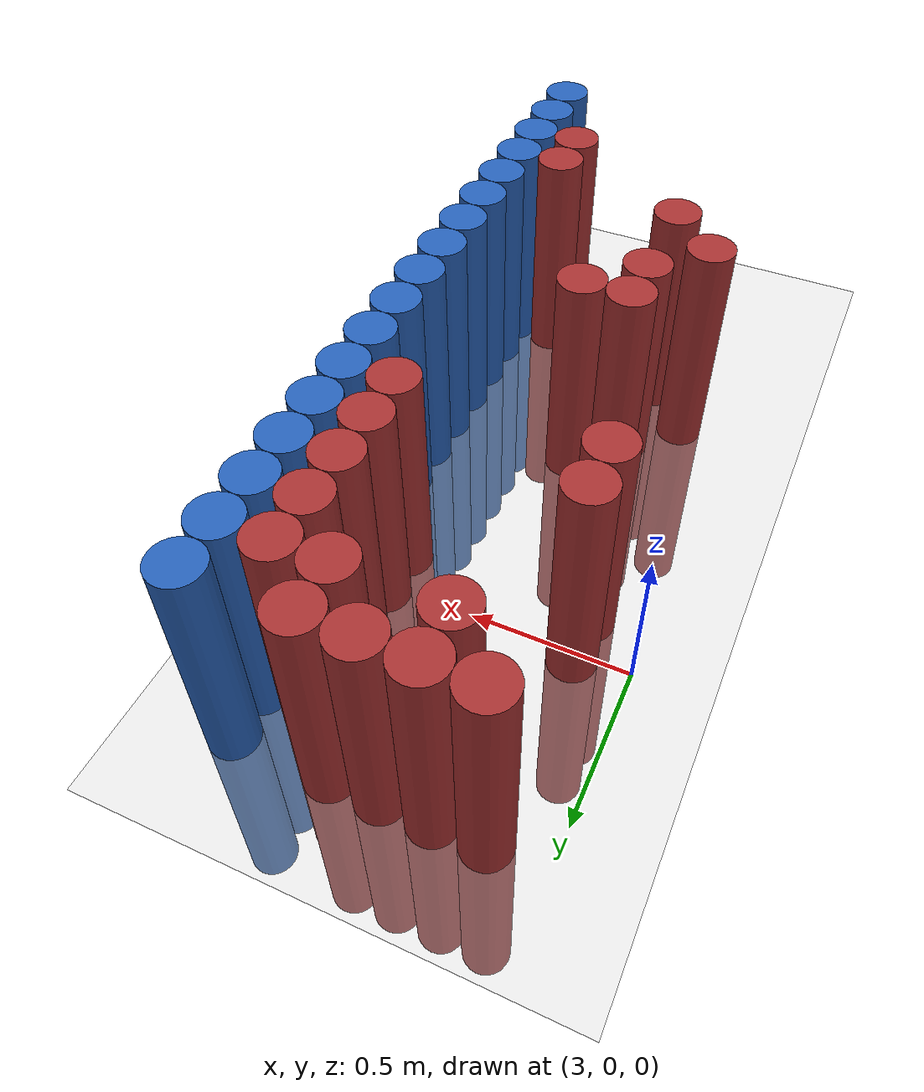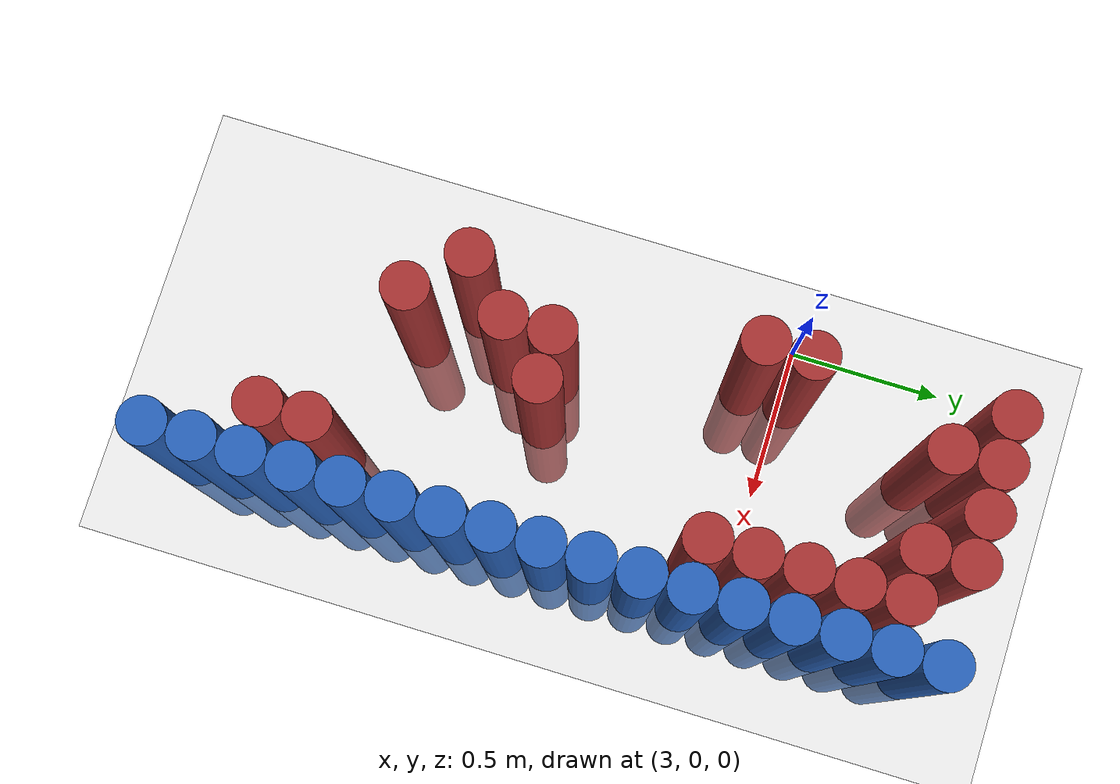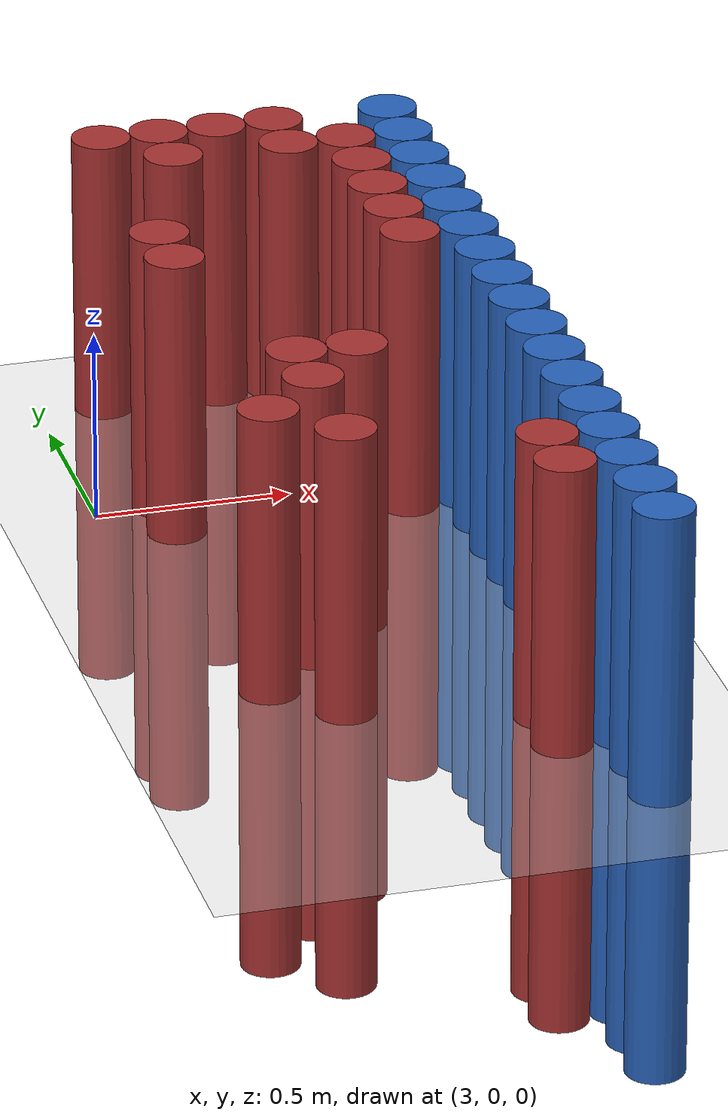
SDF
<sdf version="1.6">
 <world name="default">
  <model name="ground_plane">
   <static>1</static>
   <link name="link">
    <collision name="collision">
     <geometry><plane><normal>0 0 1</normal><size>100 100</size></plane></geometry>
     <surface><friction><ode><mu>100</mu><mu2>50</mu2></ode></friction></surface>
    </collision>
    <visual name="visual">
     <cast_shadows>0</cast_shadows>
     <geometry><plane><normal>0 0 1</normal><size>100 100</size></plane></geometry>
     <material>
      <script><uri>file://media/materials/scripts/gazebo.material</uri><name>Gazebo/Grey</name></script>
     </material>
    </visual>
   </link>
  </model>
  <model name="unit_cylinder_90">
   <static>1</static>
   <pose>3.925000 -1.775000 0.000000 0.000000 0.000000 0.000000</pose>
   <link name="link">
    <inertial>
     <mass>1</mass>
     <inertia><ixx>0.145833</ixx><ixy>0</ixy><ixz>0</ixz><iyy>0.145833</iyy><iyz>0</iyz><izz>0.125</izz></inertia>
    </inertial>
    <collision name="collision">
     <geometry><cylinder><radius>0.075000</radius><length>1.5</length></cylinder></geometry>
    </collision>
    <visual name="visual">
     <geometry><cylinder><radius>0.075000</radius><length>1.5</length></cylinder></geometry>
     <material>
      <ambient>0.152000 0.379000 0.720000 1</ambient>
      <diffuse>0.152000 0.379000 0.720000 1</diffuse>
     </material>
     <material>
      <script><name>Gazebo/Grey</name><uri>file://media/materials/scripts/gazebo.material</uri></script>
     </material>
    </visual>
   </link>
  </model>
  <model name="unit_cylinder_92">
   <static>1</static>
   <pose>3.925000 -1.625000 0.000000 0.000000 0.000000 0.000000</pose>
   <link name="link">
    <inertial>
     <mass>1</mass>
     <inertia><ixx>0.145833</ixx><ixy>0</ixy><ixz>0</ixz><iyy>0.145833</iyy><iyz>0</iyz><izz>0.125</izz></inertia>
    </inertial>
    <collision name="collision">
     <geometry><cylinder><radius>0.075000</radius><length>1.5</length></cylinder></geometry>
    </collision>
    <visual name="visual">
     <geometry><cylinder><radius>0.075000</radius><length>1.5</length></cylinder></geometry>
     <material>
      <ambient>0.152000 0.379000 0.720000 1</ambient>
      <diffuse>0.152000 0.379000 0.720000 1</diffuse>
     </material>
     <material>
      <script><name>Gazebo/Grey</name><uri>file://media/materials/scripts/gazebo.material</uri></script>
     </material>
    </visual>
   </link>
  </model>
  <model name="unit_cylinder_94">
   <static>1</static>
   <pose>3.925000 -1.475000 0.000000 0.000000 0.000000 0.000000</pose>
   <link name="link">
    <inertial>
     <mass>1</mass>
     <inertia><ixx>0.145833</ixx><ixy>0</ixy><ixz>0</ixz><iyy>0.145833</iyy><iyz>0</iyz><izz>0.125</izz></inertia>
    </inertial>
    <collision name="collision">
     <geometry><cylinder><radius>0.075000</radius><length>1.5</length></cylinder></geometry>
    </collision>
    <visual name="visual">
     <geometry><cylinder><radius>0.075000</radius><length>1.5</length></cylinder></geometry>
     <material>
      <ambient>0.152000 0.379000 0.720000 1</ambient>
      <diffuse>0.152000 0.379000 0.720000 1</diffuse>
     </material>
     <material>
      <script><name>Gazebo/Grey</name><uri>file://media/materials/scripts/gazebo.material</uri></script>
     </material>
    </visual>
   </link>
  </model>
  <model name="unit_cylinder_96">
   <static>1</static>
   <pose>3.925000 -1.325000 0.000000 0.000000 0.000000 0.000000</pose>
   <link name="link">
    <inertial>
     <mass>1</mass>
     <inertia><ixx>0.145833</ixx><ixy>0</ixy><ixz>0</ixz><iyy>0.145833</iyy><iyz>0</iyz><izz>0.125</izz></inertia>
    </inertial>
    <collision name="collision">
     <geometry><cylinder><radius>0.075000</radius><length>1.5</length></cylinder></geometry>
    </collision>
    <visual name="visual">
     <geometry><cylinder><radius>0.075000</radius><length>1.5</length></cylinder></geometry>
     <material>
      <ambient>0.152000 0.379000 0.720000 1</ambient>
      <diffuse>0.152000 0.379000 0.720000 1</diffuse>
     </material>
     <material>
      <script><name>Gazebo/Grey</name><uri>file://media/materials/scripts/gazebo.material</uri></script>
     </material>
    </visual>
   </link>
  </model>
  <model name="unit_cylinder_98">
   <static>1</static>
   <pose>3.925000 -1.175000 0.000000 0.000000 0.000000 0.000000</pose>
   <link name="link">
    <inertial>
     <mass>1</mass>
     <inertia><ixx>0.145833</ixx><ixy>0</ixy><ixz>0</ixz><iyy>0.145833</iyy><iyz>0</iyz><izz>0.125</izz></inertia>
    </inertial>
    <collision name="collision">
     <geometry><cylinder><radius>0.075000</radius><length>1.5</length></cylinder></geometry>
    </collision>
    <visual name="visual">
     <geometry><cylinder><radius>0.075000</radius><length>1.5</length></cylinder></geometry>
     <material>
      <ambient>0.152000 0.379000 0.720000 1</ambient>
      <diffuse>0.152000 0.379000 0.720000 1</diffuse>
     </material>
     <material>
      <script><name>Gazebo/Grey</name><uri>file://media/materials/scripts/gazebo.material</uri></script>
     </material>
    </visual>
   </link>
  </model>
  <model name="unit_cylinder_100">
   <static>1</static>
   <pose>3.925000 -1.025000 0.000000 0.000000 0.000000 0.000000</pose>
   <link name="link">
    <inertial>
     <mass>1</mass>
     <inertia><ixx>0.145833</ixx><ixy>0</ixy><ixz>0</ixz><iyy>0.145833</iyy><iyz>0</iyz><izz>0.125</izz></inertia>
    </inertial>
    <collision name="collision">
     <geometry><cylinder><radius>0.075000</radius><length>1.5</length></cylinder></geometry>
    </collision>
    <visual name="visual">
     <geometry><cylinder><radius>0.075000</radius><length>1.5</length></cylinder></geometry>
     <material>
      <ambient>0.152000 0.379000 0.720000 1</ambient>
      <diffuse>0.152000 0.379000 0.720000 1</diffuse>
     </material>
     <material>
      <script><name>Gazebo/Grey</name><uri>file://media/materials/scripts/gazebo.material</uri></script>
     </material>
    </visual>
   </link>
  </model>
  <model name="unit_cylinder_102">
   <static>1</static>
   <pose>3.925000 -0.875000 0.000000 0.000000 0.000000 0.000000</pose>
   <link name="link">
    <inertial>
     <mass>1</mass>
     <inertia><ixx>0.145833</ixx><ixy>0</ixy><ixz>0</ixz><iyy>0.145833</iyy><iyz>0</iyz><izz>0.125</izz></inertia>
    </inertial>
    <collision name="collision">
     <geometry><cylinder><radius>0.075000</radius><length>1.5</length></cylinder></geometry>
    </collision>
    <visual name="visual">
     <geometry><cylinder><radius>0.075000</radius><length>1.5</length></cylinder></geometry>
     <material>
      <ambient>0.152000 0.379000 0.720000 1</ambient>
      <diffuse>0.152000 0.379000 0.720000 1</diffuse>
     </material>
     <material>
      <script><name>Gazebo/Grey</name><uri>file://media/materials/scripts/gazebo.material</uri></script>
     </material>
    </visual>
   </link>
  </model>
  <model name="unit_cylinder_104">
   <static>1</static>
   <pose>3.925000 -0.725000 0.000000 0.000000 0.000000 0.000000</pose>
   <link name="link">
    <inertial>
     <mass>1</mass>
     <inertia><ixx>0.145833</ixx><ixy>0</ixy><ixz>0</ixz><iyy>0.145833</iyy><iyz>0</iyz><izz>0.125</izz></inertia>
    </inertial>
    <collision name="collision">
     <geometry><cylinder><radius>0.075000</radius><length>1.5</length></cylinder></geometry>
    </collision>
    <visual name="visual">
     <geometry><cylinder><radius>0.075000</radius><length>1.5</length></cylinder></geometry>
     <material>
      <ambient>0.152000 0.379000 0.720000 1</ambient>
      <diffuse>0.152000 0.379000 0.720000 1</diffuse>
     </material>
     <material>
      <script><name>Gazebo/Grey</name><uri>file://media/materials/scripts/gazebo.material</uri></script>
     </material>
    </visual>
   </link>
  </model>
  <model name="unit_cylinder_106">
   <static>1</static>
   <pose>3.925000 -0.575000 0.000000 0.000000 0.000000 0.000000</pose>
   <link name="link">
    <inertial>
     <mass>1</mass>
     <inertia><ixx>0.145833</ixx><ixy>0</ixy><ixz>0</ixz><iyy>0.145833</iyy><iyz>0</iyz><izz>0.125</izz></inertia>
    </inertial>
    <collision name="collision">
     <geometry><cylinder><radius>0.075000</radius><length>1.5</length></cylinder></geometry>
    </collision>
    <visual name="visual">
     <geometry><cylinder><radius>0.075000</radius><length>1.5</length></cylinder></geometry>
     <material>
      <ambient>0.152000 0.379000 0.720000 1</ambient>
      <diffuse>0.152000 0.379000 0.720000 1</diffuse>
     </material>
     <material>
      <script><name>Gazebo/Grey</name><uri>file://media/materials/scripts/gazebo.material</uri></script>
     </material>
    </visual>
   </link>
  </model>
  <model name="unit_cylinder_108">
   <static>1</static>
   <pose>3.925000 -0.425000 0.000000 0.000000 0.000000 0.000000</pose>
   <link name="link">
    <inertial>
     <mass>1</mass>
     <inertia><ixx>0.145833</ixx><ixy>0</ixy><ixz>0</ixz><iyy>0.145833</iyy><iyz>0</iyz><izz>0.125</izz></inertia>
    </inertial>
    <collision name="collision">
     <geometry><cylinder><radius>0.075000</radius><length>1.5</length></cylinder></geometry>
    </collision>
    <visual name="visual">
     <geometry><cylinder><radius>0.075000</radius><length>1.5</length></cylinder></geometry>
     <material>
      <ambient>0.152000 0.379000 0.720000 1</ambient>
      <diffuse>0.152000 0.379000 0.720000 1</diffuse>
     </material>
     <material>
      <script><name>Gazebo/Grey</name><uri>file://media/materials/scripts/gazebo.material</uri></script>
     </material>
    </visual>
   </link>
  </model>
  <model name="unit_cylinder_110">
   <static>1</static>
   <pose>3.925000 -0.275000 0.000000 0.000000 0.000000 0.000000</pose>
   <link name="link">
    <inertial>
     <mass>1</mass>
     <inertia><ixx>0.145833</ixx><ixy>0</ixy><ixz>0</ixz><iyy>0.145833</iyy><iyz>0</iyz><izz>0.125</izz></inertia>
    </inertial>
    <collision name="collision">
     <geometry><cylinder><radius>0.075000</radius><length>1.5</length></cylinder></geometry>
    </collision>
    <visual name="visual">
     <geometry><cylinder><radius>0.075000</radius><length>1.5</length></cylinder></geometry>
     <material>
      <ambient>0.152000 0.379000 0.720000 1</ambient>
      <diffuse>0.152000 0.379000 0.720000 1</diffuse>
     </material>
     <material>
      <script><name>Gazebo/Grey</name><uri>file://media/materials/scripts/gazebo.material</uri></script>
     </material>
    </visual>
   </link>
  </model>
  <model name="unit_cylinder_112">
   <static>1</static>
   <pose>3.925000 -0.125000 0.000000 0.000000 0.000000 0.000000</pose>
   <link name="link">
    <inertial>
     <mass>1</mass>
     <inertia><ixx>0.145833</ixx><ixy>0</ixy><ixz>0</ixz><iyy>0.145833</iyy><iyz>0</iyz><izz>0.125</izz></inertia>
    </inertial>
    <collision name="collision">
     <geometry><cylinder><radius>0.075000</radius><length>1.5</length></cylinder></geometry>
    </collision>
    <visual name="visual">
     <geometry><cylinder><radius>0.075000</radius><length>1.5</length></cylinder></geometry>
     <material>
      <ambient>0.152000 0.379000 0.720000 1</ambient>
      <diffuse>0.152000 0.379000 0.720000 1</diffuse>
     </material>
     <material>
      <script><name>Gazebo/Grey</name><uri>file://media/materials/scripts/gazebo.material</uri></script>
     </material>
    </visual>
   </link>
  </model>
  <model name="unit_cylinder_114">
   <static>1</static>
   <pose>3.925000 0.025000 0.000000 0.000000 0.000000 0.000000</pose>
   <link name="link">
    <inertial>
     <mass>1</mass>
     <inertia><ixx>0.145833</ixx><ixy>0</ixy><ixz>0</ixz><iyy>0.145833</iyy><iyz>0</iyz><izz>0.125</izz></inertia>
    </inertial>
    <collision name="collision">
     <geometry><cylinder><radius>0.075000</radius><length>1.5</length></cylinder></geometry>
    </collision>
    <visual name="visual">
     <geometry><cylinder><radius>0.075000</radius><length>1.5</length></cylinder></geometry>
     <material>
      <ambient>0.152000 0.379000 0.720000 1</ambient>
      <diffuse>0.152000 0.379000 0.720000 1</diffuse>
     </material>
     <material>
      <script><name>Gazebo/Grey</name><uri>file://media/materials/scripts/gazebo.material</uri></script>
     </material>
    </visual>
   </link>
  </model>
  <model name="unit_cylinder_116">
   <static>1</static>
   <pose>3.925000 0.175000 0.000000 0.000000 0.000000 0.000000</pose>
   <link name="link">
    <inertial>
     <mass>1</mass>
     <inertia><ixx>0.145833</ixx><ixy>0</ixy><ixz>0</ixz><iyy>0.145833</iyy><iyz>0</iyz><izz>0.125</izz></inertia>
    </inertial>
    <collision name="collision">
     <geometry><cylinder><radius>0.075000</radius><length>1.5</length></cylinder></geometry>
    </collision>
    <visual name="visual">
     <geometry><cylinder><radius>0.075000</radius><length>1.5</length></cylinder></geometry>
     <material>
      <ambient>0.152000 0.379000 0.720000 1</ambient>
      <diffuse>0.152000 0.379000 0.720000 1</diffuse>
     </material>
     <material>
      <script><name>Gazebo/Grey</name><uri>file://media/materials/scripts/gazebo.material</uri></script>
     </material>
    </visual>
   </link>
  </model>
  <model name="unit_cylinder_118">
   <static>1</static>
   <pose>3.925000 0.325000 0.000000 0.000000 0.000000 0.000000</pose>
   <link name="link">
    <inertial>
     <mass>1</mass>
     <inertia><ixx>0.145833</ixx><ixy>0</ixy><ixz>0</ixz><iyy>0.145833</iyy><iyz>0</iyz><izz>0.125</izz></inertia>
    </inertial>
    <collision name="collision">
     <geometry><cylinder><radius>0.075000</radius><length>1.5</length></cylinder></geometry>
    </collision>
    <visual name="visual">
     <geometry><cylinder><radius>0.075000</radius><length>1.5</length></cylinder></geometry>
     <material>
      <ambient>0.152000 0.379000 0.720000 1</ambient>
      <diffuse>0.152000 0.379000 0.720000 1</diffuse>
     </material>
     <material>
      <script><name>Gazebo/Grey</name><uri>file://media/materials/scripts/gazebo.material</uri></script>
     </material>
    </visual>
   </link>
  </model>
  <model name="unit_cylinder_120">
   <static>1</static>
   <pose>3.925000 0.475000 0.000000 0.000000 0.000000 0.000000</pose>
   <link name="link">
    <inertial>
     <mass>1</mass>
     <inertia><ixx>0.145833</ixx><ixy>0</ixy><ixz>0</ixz><iyy>0.145833</iyy><iyz>0</iyz><izz>0.125</izz></inertia>
    </inertial>
    <collision name="collision">
     <geometry><cylinder><radius>0.075000</radius><length>1.5</length></cylinder></geometry>
    </collision>
    <visual name="visual">
     <geometry><cylinder><radius>0.075000</radius><length>1.5</length></cylinder></geometry>
     <material>
      <ambient>0.152000 0.379000 0.720000 1</ambient>
      <diffuse>0.152000 0.379000 0.720000 1</diffuse>
     </material>
     <material>
      <script><name>Gazebo/Grey</name><uri>file://media/materials/scripts/gazebo.material</uri></script>
     </material>
    </visual>
   </link>
  </model>
  <model name="unit_cylinder_122">
   <static>1</static>
   <pose>3.925000 0.625000 0.000000 0.000000 0.000000 0.000000</pose>
   <link name="link">
    <inertial>
     <mass>1</mass>
     <inertia><ixx>0.145833</ixx><ixy>0</ixy><ixz>0</ixz><iyy>0.145833</iyy><iyz>0</iyz><izz>0.125</izz></inertia>
    </inertial>
    <collision name="collision">
     <geometry><cylinder><radius>0.075000</radius><length>1.5</length></cylinder></geometry>
    </collision>
    <visual name="visual">
     <geometry><cylinder><radius>0.075000</radius><length>1.5</length></cylinder></geometry>
     <material>
      <ambient>0.152000 0.379000 0.720000 1</ambient>
      <diffuse>0.152000 0.379000 0.720000 1</diffuse>
     </material>
     <material>
      <script><name>Gazebo/Grey</name><uri>file://media/materials/scripts/gazebo.material</uri></script>
     </material>
    </visual>
   </link>
  </model>
  <model name="unit_cylinder_478">
   <static>1</static>
   <pose>3.175000 -1.025000 0.000000 0.000000 0.000000 0.000000</pose>
   <link name="link">
    <inertial>
     <mass>1</mass>
     <inertia><ixx>0.145833</ixx><ixy>0</ixy><ixz>0</ixz><iyy>0.145833</iyy><iyz>0</iyz><izz>0.125</izz></inertia>
    </inertial>
    <collision name="collision">
     <geometry><cylinder><radius>0.075000</radius><length>1.5</length></cylinder></geometry>
    </collision>
    <visual name="visual">
     <geometry><cylinder><radius>0.075000</radius><length>1.5</length></cylinder></geometry>
     <material>
      <ambient>0.648000 0.192000 0.192000 1</ambient>
      <diffuse>0.648000 0.192000 0.192000 1</diffuse>
     </material>
     <material>
      <script><name>Gazebo/Grey</name><uri>file://media/materials/scripts/gazebo.material</uri></script>
     </material>
    </visual>
   </link>
  </model>
  <model name="unit_cylinder_479">
   <static>1</static>
   <pose>3.175000 -0.125000 0.000000 0.000000 0.000000 0.000000</pose>
   <link name="link">
    <inertial>
     <mass>1</mass>
     <inertia><ixx>0.145833</ixx><ixy>0</ixy><ixz>0</ixz><iyy>0.145833</iyy><iyz>0</iyz><izz>0.125</izz></inertia>
    </inertial>
    <collision name="collision">
     <geometry><cylinder><radius>0.075000</radius><length>1.5</length></cylinder></geometry>
    </collision>
    <visual name="visual">
     <geometry><cylinder><radius>0.075000</radius><length>1.5</length></cylinder></geometry>
     <material>
      <ambient>0.648000 0.192000 0.192000 1</ambient>
      <diffuse>0.648000 0.192000 0.192000 1</diffuse>
     </material>
     <material>
      <script><name>Gazebo/Grey</name><uri>file://media/materials/scripts/gazebo.material</uri></script>
     </material>
    </visual>
   </link>
  </model>
  <model name="unit_cylinder_480">
   <static>1</static>
   <pose>3.175000 0.025000 0.000000 0.000000 0.000000 0.000000</pose>
   <link name="link">
    <inertial>
     <mass>1</mass>
     <inertia><ixx>0.145833</ixx><ixy>0</ixy><ixz>0</ixz><iyy>0.145833</iyy><iyz>0</iyz><izz>0.125</izz></inertia>
    </inertial>
    <collision name="collision">
     <geometry><cylinder><radius>0.075000</radius><length>1.5</length></cylinder></geometry>
    </collision>
    <visual name="visual">
     <geometry><cylinder><radius>0.075000</radius><length>1.5</length></cylinder></geometry>
     <material>
      <ambient>0.648000 0.192000 0.192000 1</ambient>
      <diffuse>0.648000 0.192000 0.192000 1</diffuse>
     </material>
     <material>
      <script><name>Gazebo/Grey</name><uri>file://media/materials/scripts/gazebo.material</uri></script>
     </material>
    </visual>
   </link>
  </model>
  <model name="unit_cylinder_481">
   <static>1</static>
   <pose>3.175000 0.625000 0.000000 0.000000 0.000000 0.000000</pose>
   <link name="link">
    <inertial>
     <mass>1</mass>
     <inertia><ixx>0.145833</ixx><ixy>0</ixy><ixz>0</ixz><iyy>0.145833</iyy><iyz>0</iyz><izz>0.125</izz></inertia>
    </inertial>
    <collision name="collision">
     <geometry><cylinder><radius>0.075000</radius><length>1.5</length></cylinder></geometry>
    </collision>
    <visual name="visual">
     <geometry><cylinder><radius>0.075000</radius><length>1.5</length></cylinder></geometry>
     <material>
      <ambient>0.648000 0.192000 0.192000 1</ambient>
      <diffuse>0.648000 0.192000 0.192000 1</diffuse>
     </material>
     <material>
      <script><name>Gazebo/Grey</name><uri>file://media/materials/scripts/gazebo.material</uri></script>
     </material>
    </visual>
   </link>
  </model>
  <model name="unit_cylinder_486">
   <static>1</static>
   <pose>3.325000 -1.175000 0.000000 0.000000 0.000000 0.000000</pose>
   <link name="link">
    <inertial>
     <mass>1</mass>
     <inertia><ixx>0.145833</ixx><ixy>0</ixy><ixz>0</ixz><iyy>0.145833</iyy><iyz>0</iyz><izz>0.125</izz></inertia>
    </inertial>
    <collision name="collision">
     <geometry><cylinder><radius>0.075000</radius><length>1.5</length></cylinder></geometry>
    </collision>
    <visual name="visual">
     <geometry><cylinder><radius>0.075000</radius><length>1.5</length></cylinder></geometry>
     <material>
      <ambient>0.648000 0.192000 0.192000 1</ambient>
      <diffuse>0.648000 0.192000 0.192000 1</diffuse>
     </material>
     <material>
      <script><name>Gazebo/Grey</name><uri>file://media/materials/scripts/gazebo.material</uri></script>
     </material>
    </visual>
   </link>
  </model>
  <model name="unit_cylinder_487">
   <static>1</static>
   <pose>3.325000 -0.875000 0.000000 0.000000 0.000000 0.000000</pose>
   <link name="link">
    <inertial>
     <mass>1</mass>
     <inertia><ixx>0.145833</ixx><ixy>0</ixy><ixz>0</ixz><iyy>0.145833</iyy><iyz>0</iyz><izz>0.125</izz></inertia>
    </inertial>
    <collision name="collision">
     <geometry><cylinder><radius>0.075000</radius><length>1.5</length></cylinder></geometry>
    </collision>
    <visual name="visual">
     <geometry><cylinder><radius>0.075000</radius><length>1.5</length></cylinder></geometry>
     <material>
      <ambient>0.648000 0.192000 0.192000 1</ambient>
      <diffuse>0.648000 0.192000 0.192000 1</diffuse>
     </material>
     <material>
      <script><name>Gazebo/Grey</name><uri>file://media/materials/scripts/gazebo.material</uri></script>
     </material>
    </visual>
   </link>
  </model>
  <model name="unit_cylinder_488">
   <static>1</static>
   <pose>3.325000 -0.725000 0.000000 0.000000 0.000000 0.000000</pose>
   <link name="link">
    <inertial>
     <mass>1</mass>
     <inertia><ixx>0.145833</ixx><ixy>0</ixy><ixz>0</ixz><iyy>0.145833</iyy><iyz>0</iyz><izz>0.125</izz></inertia>
    </inertial>
    <collision name="collision">
     <geometry><cylinder><radius>0.075000</radius><length>1.5</length></cylinder></geometry>
    </collision>
    <visual name="visual">
     <geometry><cylinder><radius>0.075000</radius><length>1.5</length></cylinder></geometry>
     <material>
      <ambient>0.648000 0.192000 0.192000 1</ambient>
      <diffuse>0.648000 0.192000 0.192000 1</diffuse>
     </material>
     <material>
      <script><name>Gazebo/Grey</name><uri>file://media/materials/scripts/gazebo.material</uri></script>
     </material>
    </visual>
   </link>
  </model>
  <model name="unit_cylinder_489">
   <static>1</static>
   <pose>3.325000 0.475000 0.000000 0.000000 0.000000 0.000000</pose>
   <link name="link">
    <inertial>
     <mass>1</mass>
     <inertia><ixx>0.145833</ixx><ixy>0</ixy><ixz>0</ixz><iyy>0.145833</iyy><iyz>0</iyz><izz>0.125</izz></inertia>
    </inertial>
    <collision name="collision">
     <geometry><cylinder><radius>0.075000</radius><length>1.5</length></cylinder></geometry>
    </collision>
    <visual name="visual">
     <geometry><cylinder><radius>0.075000</radius><length>1.5</length></cylinder></geometry>
     <material>
      <ambient>0.648000 0.192000 0.192000 1</ambient>
      <diffuse>0.648000 0.192000 0.192000 1</diffuse>
     </material>
     <material>
      <script><name>Gazebo/Grey</name><uri>file://media/materials/scripts/gazebo.material</uri></script>
     </material>
    </visual>
   </link>
  </model>
  <model name="unit_cylinder_490">
   <static>1</static>
   <pose>3.325000 0.625000 0.000000 0.000000 0.000000 0.000000</pose>
   <link name="link">
    <inertial>
     <mass>1</mass>
     <inertia><ixx>0.145833</ixx><ixy>0</ixy><ixz>0</ixz><iyy>0.145833</iyy><iyz>0</iyz><izz>0.125</izz></inertia>
    </inertial>
    <collision name="collision">
     <geometry><cylinder><radius>0.075000</radius><length>1.5</length></cylinder></geometry>
    </collision>
    <visual name="visual">
     <geometry><cylinder><radius>0.075000</radius><length>1.5</length></cylinder></geometry>
     <material>
      <ambient>0.648000 0.192000 0.192000 1</ambient>
      <diffuse>0.648000 0.192000 0.192000 1</diffuse>
     </material>
     <material>
      <script><name>Gazebo/Grey</name><uri>file://media/materials/scripts/gazebo.material</uri></script>
     </material>
    </visual>
   </link>
  </model>
  <model name="unit_cylinder_500">
   <static>1</static>
   <pose>3.475000 -0.725000 0.000000 0.000000 0.000000 0.000000</pose>
   <link name="link">
    <inertial>
     <mass>1</mass>
     <inertia><ixx>0.145833</ixx><ixy>0</ixy><ixz>0</ixz><iyy>0.145833</iyy><iyz>0</iyz><izz>0.125</izz></inertia>
    </inertial>
    <collision name="collision">
     <geometry><cylinder><radius>0.075000</radius><length>1.5</length></cylinder></geometry>
    </collision>
    <visual name="visual">
     <geometry><cylinder><radius>0.075000</radius><length>1.5</length></cylinder></geometry>
     <material>
      <ambient>0.648000 0.192000 0.192000 1</ambient>
      <diffuse>0.648000 0.192000 0.192000 1</diffuse>
     </material>
     <material>
      <script><name>Gazebo/Grey</name><uri>file://media/materials/scripts/gazebo.material</uri></script>
     </material>
    </visual>
   </link>
  </model>
  <model name="unit_cylinder_501">
   <static>1</static>
   <pose>3.475000 0.625000 0.000000 0.000000 0.000000 0.000000</pose>
   <link name="link">
    <inertial>
     <mass>1</mass>
     <inertia><ixx>0.145833</ixx><ixy>0</ixy><ixz>0</ixz><iyy>0.145833</iyy><iyz>0</iyz><izz>0.125</izz></inertia>
    </inertial>
    <collision name="collision">
     <geometry><cylinder><radius>0.075000</radius><length>1.5</length></cylinder></geometry>
    </collision>
    <visual name="visual">
     <geometry><cylinder><radius>0.075000</radius><length>1.5</length></cylinder></geometry>
     <material>
      <ambient>0.648000 0.192000 0.192000 1</ambient>
      <diffuse>0.648000 0.192000 0.192000 1</diffuse>
     </material>
     <material>
      <script><name>Gazebo/Grey</name><uri>file://media/materials/scripts/gazebo.material</uri></script>
     </material>
    </visual>
   </link>
  </model>
  <model name="unit_cylinder_506">
   <static>1</static>
   <pose>3.625000 0.475000 0.000000 0.000000 0.000000 0.000000</pose>
   <link name="link">
    <inertial>
     <mass>1</mass>
     <inertia><ixx>0.145833</ixx><ixy>0</ixy><ixz>0</ixz><iyy>0.145833</iyy><iyz>0</iyz><izz>0.125</izz></inertia>
    </inertial>
    <collision name="collision">
     <geometry><cylinder><radius>0.075000</radius><length>1.5</length></cylinder></geometry>
    </collision>
    <visual name="visual">
     <geometry><cylinder><radius>0.075000</radius><length>1.5</length></cylinder></geometry>
     <material>
      <ambient>0.648000 0.192000 0.192000 1</ambient>
      <diffuse>0.648000 0.192000 0.192000 1</diffuse>
     </material>
     <material>
      <script><name>Gazebo/Grey</name><uri>file://media/materials/scripts/gazebo.material</uri></script>
     </material>
    </visual>
   </link>
  </model>
  <model name="unit_cylinder_507">
   <static>1</static>
   <pose>3.625000 0.625000 0.000000 0.000000 0.000000 0.000000</pose>
   <link name="link">
    <inertial>
     <mass>1</mass>
     <inertia><ixx>0.145833</ixx><ixy>0</ixy><ixz>0</ixz><iyy>0.145833</iyy><iyz>0</iyz><izz>0.125</izz></inertia>
    </inertial>
    <collision name="collision">
     <geometry><cylinder><radius>0.075000</radius><length>1.5</length></cylinder></geometry>
    </collision>
    <visual name="visual">
     <geometry><cylinder><radius>0.075000</radius><length>1.5</length></cylinder></geometry>
     <material>
      <ambient>0.648000 0.192000 0.192000 1</ambient>
      <diffuse>0.648000 0.192000 0.192000 1</diffuse>
     </material>
     <material>
      <script><name>Gazebo/Grey</name><uri>file://media/materials/scripts/gazebo.material</uri></script>
     </material>
    </visual>
   </link>
  </model>
  <model name="unit_cylinder_516">
   <static>1</static>
   <pose>3.775000 -1.475000 0.000000 0.000000 0.000000 0.000000</pose>
   <link name="link">
    <inertial>
     <mass>1</mass>
     <inertia><ixx>0.145833</ixx><ixy>0</ixy><ixz>0</ixz><iyy>0.145833</iyy><iyz>0</iyz><izz>0.125</izz></inertia>
    </inertial>
    <collision name="collision">
     <geometry><cylinder><radius>0.075000</radius><length>1.5</length></cylinder></geometry>
    </collision>
    <visual name="visual">
     <geometry><cylinder><radius>0.075000</radius><length>1.5</length></cylinder></geometry>
     <material>
      <ambient>0.648000 0.192000 0.192000 1</ambient>
      <diffuse>0.648000 0.192000 0.192000 1</diffuse>
     </material>
     <material>
      <script><name>Gazebo/Grey</name><uri>file://media/materials/scripts/gazebo.material</uri></script>
     </material>
    </visual>
   </link>
  </model>
  <model name="unit_cylinder_517">
   <static>1</static>
   <pose>3.775000 -1.325000 0.000000 0.000000 0.000000 0.000000</pose>
   <link name="link">
    <inertial>
     <mass>1</mass>
     <inertia><ixx>0.145833</ixx><ixy>0</ixy><ixz>0</ixz><iyy>0.145833</iyy><iyz>0</iyz><izz>0.125</izz></inertia>
    </inertial>
    <collision name="collision">
     <geometry><cylinder><radius>0.075000</radius><length>1.5</length></cylinder></geometry>
    </collision>
    <visual name="visual">
     <geometry><cylinder><radius>0.075000</radius><length>1.5</length></cylinder></geometry>
     <material>
      <ambient>0.648000 0.192000 0.192000 1</ambient>
      <diffuse>0.648000 0.192000 0.192000 1</diffuse>
     </material>
     <material>
      <script><name>Gazebo/Grey</name><uri>file://media/materials/scripts/gazebo.material</uri></script>
     </material>
    </visual>
   </link>
  </model>
  <model name="unit_cylinder_518">
   <static>1</static>
   <pose>3.775000 -0.125000 0.000000 0.000000 0.000000 0.000000</pose>
   <link name="link">
    <inertial>
     <mass>1</mass>
     <inertia><ixx>0.145833</ixx><ixy>0</ixy><ixz>0</ixz><iyy>0.145833</iyy><iyz>0</iyz><izz>0.125</izz></inertia>
    </inertial>
    <collision name="collision">
     <geometry><cylinder><radius>0.075000</radius><length>1.5</length></cylinder></geometry>
    </collision>
    <visual name="visual">
     <geometry><cylinder><radius>0.075000</radius><length>1.5</length></cylinder></geometry>
     <material>
      <ambient>0.648000 0.192000 0.192000 1</ambient>
      <diffuse>0.648000 0.192000 0.192000 1</diffuse>
     </material>
     <material>
      <script><name>Gazebo/Grey</name><uri>file://media/materials/scripts/gazebo.material</uri></script>
     </material>
    </visual>
   </link>
  </model>
  <model name="unit_cylinder_519">
   <static>1</static>
   <pose>3.775000 0.025000 0.000000 0.000000 0.000000 0.000000</pose>
   <link name="link">
    <inertial>
     <mass>1</mass>
     <inertia><ixx>0.145833</ixx><ixy>0</ixy><ixz>0</ixz><iyy>0.145833</iyy><iyz>0</iyz><izz>0.125</izz></inertia>
    </inertial>
    <collision name="collision">
     <geometry><cylinder><radius>0.075000</radius><length>1.5</length></cylinder></geometry>
    </collision>
    <visual name="visual">
     <geometry><cylinder><radius>0.075000</radius><length>1.5</length></cylinder></geometry>
     <material>
      <ambient>0.648000 0.192000 0.192000 1</ambient>
      <diffuse>0.648000 0.192000 0.192000 1</diffuse>
     </material>
     <material>
      <script><name>Gazebo/Grey</name><uri>file://media/materials/scripts/gazebo.material</uri></script>
     </material>
    </visual>
   </link>
  </model>
  <model name="unit_cylinder_520">
   <static>1</static>
   <pose>3.775000 0.175000 0.000000 0.000000 0.000000 0.000000</pose>
   <link name="link">
    <inertial>
     <mass>1</mass>
     <inertia><ixx>0.145833</ixx><ixy>0</ixy><ixz>0</ixz><iyy>0.145833</iyy><iyz>0</iyz><izz>0.125</izz></inertia>
    </inertial>
    <collision name="collision">
     <geometry><cylinder><radius>0.075000</radius><length>1.5</length></cylinder></geometry>
    </collision>
    <visual name="visual">
     <geometry><cylinder><radius>0.075000</radius><length>1.5</length></cylinder></geometry>
     <material>
      <ambient>0.648000 0.192000 0.192000 1</ambient>
      <diffuse>0.648000 0.192000 0.192000 1</diffuse>
     </material>
     <material>
      <script><name>Gazebo/Grey</name><uri>file://media/materials/scripts/gazebo.material</uri></script>
     </material>
    </visual>
   </link>
  </model>
  <model name="unit_cylinder_521">
   <static>1</static>
   <pose>3.775000 0.325000 0.000000 0.000000 0.000000 0.000000</pose>
   <link name="link">
    <inertial>
     <mass>1</mass>
     <inertia><ixx>0.145833</ixx><ixy>0</ixy><ixz>0</ixz><iyy>0.145833</iyy><iyz>0</iyz><izz>0.125</izz></inertia>
    </inertial>
    <collision name="collision">
     <geometry><cylinder><radius>0.075000</radius><length>1.5</length></cylinder></geometry>
    </collision>
    <visual name="visual">
     <geometry><cylinder><radius>0.075000</radius><length>1.5</length></cylinder></geometry>
     <material>
      <ambient>0.648000 0.192000 0.192000 1</ambient>
      <diffuse>0.648000 0.192000 0.192000 1</diffuse>
     </material>
     <material>
      <script><name>Gazebo/Grey</name><uri>file://media/materials/scripts/gazebo.material</uri></script>
     </material>
    </visual>
   </link>
  </model>
  <model name="unit_cylinder_522">
   <static>1</static>
   <pose>3.775000 0.475000 0.000000 0.000000 0.000000 0.000000</pose>
   <link name="link">
    <inertial>
     <mass>1</mass>
     <inertia><ixx>0.145833</ixx><ixy>0</ixy><ixz>0</ixz><iyy>0.145833</iyy><iyz>0</iyz><izz>0.125</izz></inertia>
    </inertial>
    <collision name="collision">
     <geometry><cylinder><radius>0.075000</radius><length>1.5</length></cylinder></geometry>
    </collision>
    <visual name="visual">
     <geometry><cylinder><radius>0.075000</radius><length>1.5</length></cylinder></geometry>
     <material>
      <ambient>0.648000 0.192000 0.192000 1</ambient>
      <diffuse>0.648000 0.192000 0.192000 1</diffuse>
     </material>
     <material>
      <script><name>Gazebo/Grey</name><uri>file://media/materials/scripts/gazebo.material</uri></script>
     </material>
    </visual>
   </link>
  </model>
  <model name="unit_cylinder_540">
   <static>1</static>
   <pose>3.925000 -1.775000 0.000000 0.000000 0.000000 0.000000</pose>
   <link name="link">
    <inertial>
     <mass>1</mass>
     <inertia><ixx>0.145833</ixx><ixy>0</ixy><ixz>0</ixz><iyy>0.145833</iyy><iyz>0</iyz><izz>0.125</izz></inertia>
    </inertial>
    <collision name="collision">
     <geometry><cylinder><radius>0.075000</radius><length>1.5</length></cylinder></geometry>
    </collision>
    <visual name="visual">
     <geometry><cylinder><radius>0.075000</radius><length>1.5</length></cylinder></geometry>
     <material>
      <ambient>0.152000 0.379000 0.720000 1</ambient>
      <diffuse>0.152000 0.379000 0.720000 1</diffuse>
     </material>
     <material>
      <script><name>Gazebo/Grey</name><uri>file://media/materials/scripts/gazebo.material</uri></script>
     </material>
    </visual>
   </link>
  </model>
  <model name="unit_cylinder_541">
   <static>1</static>
   <pose>3.925000 -1.625000 0.000000 0.000000 0.000000 0.000000</pose>
   <link name="link">
    <inertial>
     <mass>1</mass>
     <inertia><ixx>0.145833</ixx><ixy>0</ixy><ixz>0</ixz><iyy>0.145833</iyy><iyz>0</iyz><izz>0.125</izz></inertia>
    </inertial>
    <collision name="collision">
     <geometry><cylinder><radius>0.075000</radius><length>1.5</length></cylinder></geometry>
    </collision>
    <visual name="visual">
     <geometry><cylinder><radius>0.075000</radius><length>1.5</length></cylinder></geometry>
     <material>
      <ambient>0.152000 0.379000 0.720000 1</ambient>
      <diffuse>0.152000 0.379000 0.720000 1</diffuse>
     </material>
     <material>
      <script><name>Gazebo/Grey</name><uri>file://media/materials/scripts/gazebo.material</uri></script>
     </material>
    </visual>
   </link>
  </model>
  <model name="unit_cylinder_542">
   <static>1</static>
   <pose>3.925000 -1.475000 0.000000 0.000000 0.000000 0.000000</pose>
   <link name="link">
    <inertial>
     <mass>1</mass>
     <inertia><ixx>0.145833</ixx><ixy>0</ixy><ixz>0</ixz><iyy>0.145833</iyy><iyz>0</iyz><izz>0.125</izz></inertia>
    </inertial>
    <collision name="collision">
     <geometry><cylinder><radius>0.075000</radius><length>1.5</length></cylinder></geometry>
    </collision>
    <visual name="visual">
     <geometry><cylinder><radius>0.075000</radius><length>1.5</length></cylinder></geometry>
     <material>
      <ambient>0.152000 0.379000 0.720000 1</ambient>
      <diffuse>0.152000 0.379000 0.720000 1</diffuse>
     </material>
     <material>
      <script><name>Gazebo/Grey</name><uri>file://media/materials/scripts/gazebo.material</uri></script>
     </material>
    </visual>
   </link>
  </model>
  <model name="unit_cylinder_543">
   <static>1</static>
   <pose>3.925000 -1.325000 0.000000 0.000000 0.000000 0.000000</pose>
   <link name="link">
    <inertial>
     <mass>1</mass>
     <inertia><ixx>0.145833</ixx><ixy>0</ixy><ixz>0</ixz><iyy>0.145833</iyy><iyz>0</iyz><izz>0.125</izz></inertia>
    </inertial>
    <collision name="collision">
     <geometry><cylinder><radius>0.075000</radius><length>1.5</length></cylinder></geometry>
    </collision>
    <visual name="visual">
     <geometry><cylinder><radius>0.075000</radius><length>1.5</length></cylinder></geometry>
     <material>
      <ambient>0.152000 0.379000 0.720000 1</ambient>
      <diffuse>0.152000 0.379000 0.720000 1</diffuse>
     </material>
     <material>
      <script><name>Gazebo/Grey</name><uri>file://media/materials/scripts/gazebo.material</uri></script>
     </material>
    </visual>
   </link>
  </model>
  <model name="unit_cylinder_544">
   <static>1</static>
   <pose>3.925000 -1.175000 0.000000 0.000000 0.000000 0.000000</pose>
   <link name="link">
    <inertial>
     <mass>1</mass>
     <inertia><ixx>0.145833</ixx><ixy>0</ixy><ixz>0</ixz><iyy>0.145833</iyy><iyz>0</iyz><izz>0.125</izz></inertia>
    </inertial>
    <collision name="collision">
     <geometry><cylinder><radius>0.075000</radius><length>1.5</length></cylinder></geometry>
    </collision>
    <visual name="visual">
     <geometry><cylinder><radius>0.075000</radius><length>1.5</length></cylinder></geometry>
     <material>
      <ambient>0.152000 0.379000 0.720000 1</ambient>
      <diffuse>0.152000 0.379000 0.720000 1</diffuse>
     </material>
     <material>
      <script><name>Gazebo/Grey</name><uri>file://media/materials/scripts/gazebo.material</uri></script>
     </material>
    </visual>
   </link>
  </model>
  <model name="unit_cylinder_545">
   <static>1</static>
   <pose>3.925000 -1.025000 0.000000 0.000000 0.000000 0.000000</pose>
   <link name="link">
    <inertial>
     <mass>1</mass>
     <inertia><ixx>0.145833</ixx><ixy>0</ixy><ixz>0</ixz><iyy>0.145833</iyy><iyz>0</iyz><izz>0.125</izz></inertia>
    </inertial>
    <collision name="collision">
     <geometry><cylinder><radius>0.075000</radius><length>1.5</length></cylinder></geometry>
    </collision>
    <visual name="visual">
     <geometry><cylinder><radius>0.075000</radius><length>1.5</length></cylinder></geometry>
     <material>
      <ambient>0.152000 0.379000 0.720000 1</ambient>
      <diffuse>0.152000 0.379000 0.720000 1</diffuse>
     </material>
     <material>
      <script><name>Gazebo/Grey</name><uri>file://media/materials/scripts/gazebo.material</uri></script>
     </material>
    </visual>
   </link>
  </model>
  <model name="unit_cylinder_546">
   <static>1</static>
   <pose>3.925000 -0.875000 0.000000 0.000000 0.000000 0.000000</pose>
   <link name="link">
    <inertial>
     <mass>1</mass>
     <inertia><ixx>0.145833</ixx><ixy>0</ixy><ixz>0</ixz><iyy>0.145833</iyy><iyz>0</iyz><izz>0.125</izz></inertia>
    </inertial>
    <collision name="collision">
     <geometry><cylinder><radius>0.075000</radius><length>1.5</length></cylinder></geometry>
    </collision>
    <visual name="visual">
     <geometry><cylinder><radius>0.075000</radius><length>1.5</length></cylinder></geometry>
     <material>
      <ambient>0.152000 0.379000 0.720000 1</ambient>
      <diffuse>0.152000 0.379000 0.720000 1</diffuse>
     </material>
     <material>
      <script><name>Gazebo/Grey</name><uri>file://media/materials/scripts/gazebo.material</uri></script>
     </material>
    </visual>
   </link>
  </model>
  <model name="unit_cylinder_547">
   <static>1</static>
   <pose>3.925000 -0.725000 0.000000 0.000000 0.000000 0.000000</pose>
   <link name="link">
    <inertial>
     <mass>1</mass>
     <inertia><ixx>0.145833</ixx><ixy>0</ixy><ixz>0</ixz><iyy>0.145833</iyy><iyz>0</iyz><izz>0.125</izz></inertia>
    </inertial>
    <collision name="collision">
     <geometry><cylinder><radius>0.075000</radius><length>1.5</length></cylinder></geometry>
    </collision>
    <visual name="visual">
     <geometry><cylinder><radius>0.075000</radius><length>1.5</length></cylinder></geometry>
     <material>
      <ambient>0.152000 0.379000 0.720000 1</ambient>
      <diffuse>0.152000 0.379000 0.720000 1</diffuse>
     </material>
     <material>
      <script><name>Gazebo/Grey</name><uri>file://media/materials/scripts/gazebo.material</uri></script>
     </material>
    </visual>
   </link>
  </model>
  <model name="unit_cylinder_548">
   <static>1</static>
   <pose>3.925000 -0.575000 0.000000 0.000000 0.000000 0.000000</pose>
   <link name="link">
    <inertial>
     <mass>1</mass>
     <inertia><ixx>0.145833</ixx><ixy>0</ixy><ixz>0</ixz><iyy>0.145833</iyy><iyz>0</iyz><izz>0.125</izz></inertia>
    </inertial>
    <collision name="collision">
     <geometry><cylinder><radius>0.075000</radius><length>1.5</length></cylinder></geometry>
    </collision>
    <visual name="visual">
     <geometry><cylinder><radius>0.075000</radius><length>1.5</length></cylinder></geometry>
     <material>
      <ambient>0.152000 0.379000 0.720000 1</ambient>
      <diffuse>0.152000 0.379000 0.720000 1</diffuse>
     </material>
     <material>
      <script><name>Gazebo/Grey</name><uri>file://media/materials/scripts/gazebo.material</uri></script>
     </material>
    </visual>
   </link>
  </model>
  <model name="unit_cylinder_549">
   <static>1</static>
   <pose>3.925000 -0.425000 0.000000 0.000000 0.000000 0.000000</pose>
   <link name="link">
    <inertial>
     <mass>1</mass>
     <inertia><ixx>0.145833</ixx><ixy>0</ixy><ixz>0</ixz><iyy>0.145833</iyy><iyz>0</iyz><izz>0.125</izz></inertia>
    </inertial>
    <collision name="collision">
     <geometry><cylinder><radius>0.075000</radius><length>1.5</length></cylinder></geometry>
    </collision>
    <visual name="visual">
     <geometry><cylinder><radius>0.075000</radius><length>1.5</length></cylinder></geometry>
     <material>
      <ambient>0.152000 0.379000 0.720000 1</ambient>
      <diffuse>0.152000 0.379000 0.720000 1</diffuse>
     </material>
     <material>
      <script><name>Gazebo/Grey</name><uri>file://media/materials/scripts/gazebo.material</uri></script>
     </material>
    </visual>
   </link>
  </model>
  <model name="unit_cylinder_550">
   <static>1</static>
   <pose>3.925000 -0.275000 0.000000 0.000000 0.000000 0.000000</pose>
   <link name="link">
    <inertial>
     <mass>1</mass>
     <inertia><ixx>0.145833</ixx><ixy>0</ixy><ixz>0</ixz><iyy>0.145833</iyy><iyz>0</iyz><izz>0.125</izz></inertia>
    </inertial>
    <collision name="collision">
     <geometry><cylinder><radius>0.075000</radius><length>1.5</length></cylinder></geometry>
    </collision>
    <visual name="visual">
     <geometry><cylinder><radius>0.075000</radius><length>1.5</length></cylinder></geometry>
     <material>
      <ambient>0.152000 0.379000 0.720000 1</ambient>
      <diffuse>0.152000 0.379000 0.720000 1</diffuse>
     </material>
     <material>
      <script><name>Gazebo/Grey</name><uri>file://media/materials/scripts/gazebo.material</uri></script>
     </material>
    </visual>
   </link>
  </model>
  <model name="unit_cylinder_551">
   <static>1</static>
   <pose>3.925000 -0.125000 0.000000 0.000000 0.000000 0.000000</pose>
   <link name="link">
    <inertial>
     <mass>1</mass>
     <inertia><ixx>0.145833</ixx><ixy>0</ixy><ixz>0</ixz><iyy>0.145833</iyy><iyz>0</iyz><izz>0.125</izz></inertia>
    </inertial>
    <collision name="collision">
     <geometry><cylinder><radius>0.075000</radius><length>1.5</length></cylinder></geometry>
    </collision>
    <visual name="visual">
     <geometry><cylinder><radius>0.075000</radius><length>1.5</length></cylinder></geometry>
     <material>
      <ambient>0.152000 0.379000 0.720000 1</ambient>
      <diffuse>0.152000 0.379000 0.720000 1</diffuse>
     </material>
     <material>
      <script><name>Gazebo/Grey</name><uri>file://media/materials/scripts/gazebo.material</uri></script>
     </material>
    </visual>
   </link>
  </model>
  <model name="unit_cylinder_552">
   <static>1</static>
   <pose>3.925000 0.025000 0.000000 0.000000 0.000000 0.000000</pose>
   <link name="link">
    <inertial>
     <mass>1</mass>
     <inertia><ixx>0.145833</ixx><ixy>0</ixy><ixz>0</ixz><iyy>0.145833</iyy><iyz>0</iyz><izz>0.125</izz></inertia>
    </inertial>
    <collision name="collision">
     <geometry><cylinder><radius>0.075000</radius><length>1.5</length></cylinder></geometry>
    </collision>
    <visual name="visual">
     <geometry><cylinder><radius>0.075000</radius><length>1.5</length></cylinder></geometry>
     <material>
      <ambient>0.152000 0.379000 0.720000 1</ambient>
      <diffuse>0.152000 0.379000 0.720000 1</diffuse>
     </material>
     <material>
      <script><name>Gazebo/Grey</name><uri>file://media/materials/scripts/gazebo.material</uri></script>
     </material>
    </visual>
   </link>
  </model>
  <model name="unit_cylinder_553">
   <static>1</static>
   <pose>3.925000 0.175000 0.000000 0.000000 0.000000 0.000000</pose>
   <link name="link">
    <inertial>
     <mass>1</mass>
     <inertia><ixx>0.145833</ixx><ixy>0</ixy><ixz>0</ixz><iyy>0.145833</iyy><iyz>0</iyz><izz>0.125</izz></inertia>
    </inertial>
    <collision name="collision">
     <geometry><cylinder><radius>0.075000</radius><length>1.5</length></cylinder></geometry>
    </collision>
    <visual name="visual">
     <geometry><cylinder><radius>0.075000</radius><length>1.5</length></cylinder></geometry>
     <material>
      <ambient>0.152000 0.379000 0.720000 1</ambient>
      <diffuse>0.152000 0.379000 0.720000 1</diffuse>
     </material>
     <material>
      <script><name>Gazebo/Grey</name><uri>file://media/materials/scripts/gazebo.material</uri></script>
     </material>
    </visual>
   </link>
  </model>
  <model name="unit_cylinder_554">
   <static>1</static>
   <pose>3.925000 0.325000 0.000000 0.000000 0.000000 0.000000</pose>
   <link name="link">
    <inertial>
     <mass>1</mass>
     <inertia><ixx>0.145833</ixx><ixy>0</ixy><ixz>0</ixz><iyy>0.145833</iyy><iyz>0</iyz><izz>0.125</izz></inertia>
    </inertial>
    <collision name="collision">
     <geometry><cylinder><radius>0.075000</radius><length>1.5</length></cylinder></geometry>
    </collision>
    <visual name="visual">
     <geometry><cylinder><radius>0.075000</radius><length>1.5</length></cylinder></geometry>
     <material>
      <ambient>0.152000 0.379000 0.720000 1</ambient>
      <diffuse>0.152000 0.379000 0.720000 1</diffuse>
     </material>
     <material>
      <script><name>Gazebo/Grey</name><uri>file://media/materials/scripts/gazebo.material</uri></script>
     </material>
    </visual>
   </link>
  </model>
  <model name="unit_cylinder_555">
   <static>1</static>
   <pose>3.925000 0.475000 0.000000 0.000000 0.000000 0.000000</pose>
   <link name="link">
    <inertial>
     <mass>1</mass>
     <inertia><ixx>0.145833</ixx><ixy>0</ixy><ixz>0</ixz><iyy>0.145833</iyy><iyz>0</iyz><izz>0.125</izz></inertia>
    </inertial>
    <collision name="collision">
     <geometry><cylinder><radius>0.075000</radius><length>1.5</length></cylinder></geometry>
    </collision>
    <visual name="visual">
     <geometry><cylinder><radius>0.075000</radius><length>1.5</length></cylinder></geometry>
     <material>
      <ambient>0.152000 0.379000 0.720000 1</ambient>
      <diffuse>0.152000 0.379000 0.720000 1</diffuse>
     </material>
     <material>
      <script><name>Gazebo/Grey</name><uri>file://media/materials/scripts/gazebo.material</uri></script>
     </material>
    </visual>
   </link>
  </model>
  <model name="unit_cylinder_556">
   <static>1</static>
   <pose>3.925000 0.625000 0.000000 0.000000 0.000000 0.000000</pose>
   <link name="link">
    <inertial>
     <mass>1</mass>
     <inertia><ixx>0.145833</ixx><ixy>0</ixy><ixz>0</ixz><iyy>0.145833</iyy><iyz>0</iyz><izz>0.125</izz></inertia>
    </inertial>
    <collision name="collision">
     <geometry><cylinder><radius>0.075000</radius><length>1.5</length></cylinder></geometry>
    </collision>
    <visual name="visual">
     <geometry><cylinder><radius>0.075000</radius><length>1.5</length></cylinder></geometry>
     <material>
      <ambient>0.152000 0.379000 0.720000 1</ambient>
      <diffuse>0.152000 0.379000 0.720000 1</diffuse>
     </material>
     <material>
      <script><name>Gazebo/Grey</name><uri>file://media/materials/scripts/gazebo.material</uri></script>
     </material>
    </visual>
   </link>
  </model>
 </world>
</sdf>
